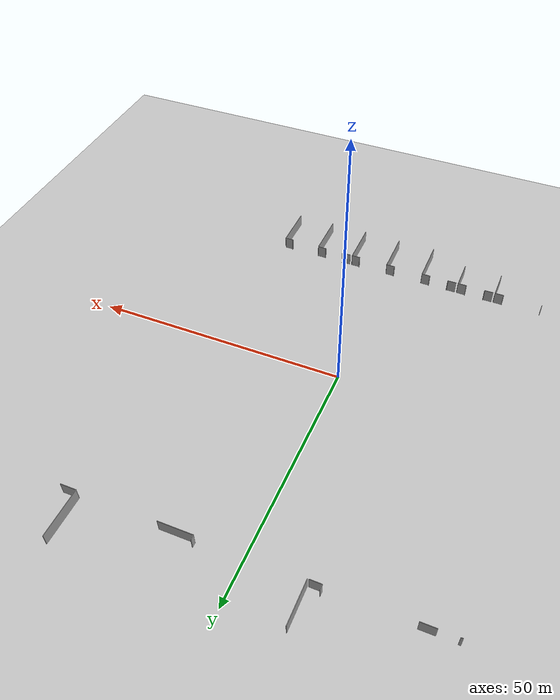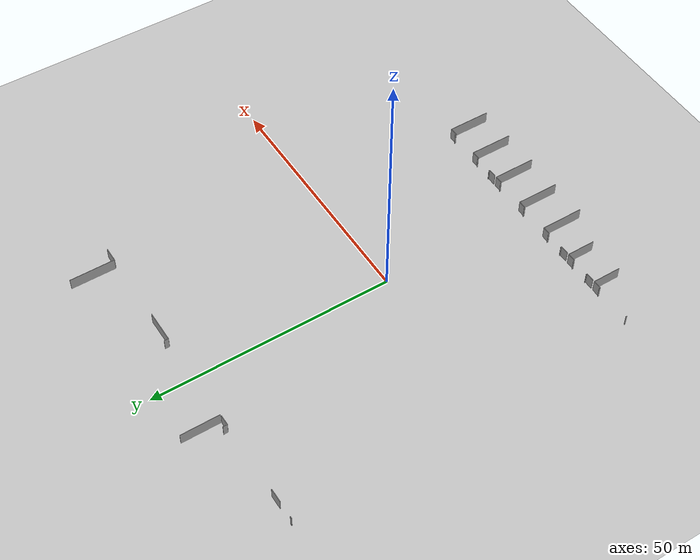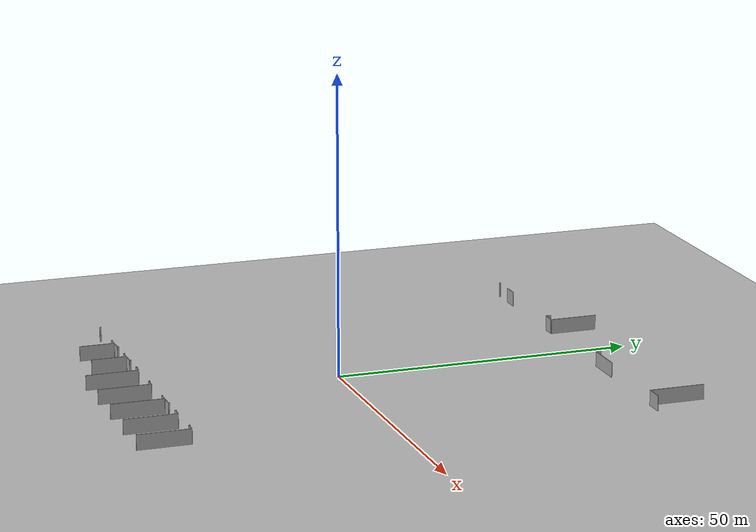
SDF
<sdf version="1.6">
 <world name="default">
  <model name="ground_plane">
   <static>1</static>
   <link name="link">
    <collision name="collision">
     <geometry><plane><normal>0 0 1</normal><size>100 100</size></plane></geometry>
     <surface><friction><ode><mu>100</mu><mu2>50</mu2></ode></friction></surface>
    </collision>
    <visual name="visual">
     <cast_shadows>0</cast_shadows>
     <geometry><plane><normal>0 0 1</normal><size>100 100</size></plane></geometry>
     <material>
      <script><uri>file://media/materials/scripts/gazebo.material</uri><name>Gazebo/Grey</name></script>
     </material>
    </visual>
   </link>
  </model>
  <model name="0510035520_A_40_1_103">
   <static>1</static>
   <link name="Wall_131">
    <collision name="Wall_131_Collision">
     <geometry><box><size>8.00477154333 0.1 2.5</size></box></geometry>
     <pose>4.00238577166 0 1.25 0 0 0</pose>
    </collision>
    <visual name="Wall_131_Visual">
     <pose>4.00238577166 0 1.25 0 0 0</pose>
     <geometry><box><size>8.00477154333 0.1 2.5</size></box></geometry>
     <material>
      <script><uri>file://media/materials/scripts/gazebo.material</uri><name>Gazebo/Grey</name></script>
      <ambient>1 1 1 1</ambient>
     </material>
    </visual>
    <pose>101.475244446 -27.1252085964 0 0 0 1.57079632679</pose>
   </link>
   <link name="Wall_147">
    <collision name="Wall_147_Collision">
     <geometry><box><size>6.50325822806 0.1 2.5</size></box></geometry>
     <pose>3.25162911403 0 1.25 0 0 0</pose>
    </collision>
    <visual name="Wall_147_Visual">
     <pose>3.25162911403 0 1.25 0 0 0</pose>
     <geometry><box><size>6.50325822806 0.1 2.5</size></box></geometry>
     <material>
      <script><uri>file://media/materials/scripts/gazebo.material</uri><name>Gazebo/Grey</name></script>
      <ambient>1 1 1 1</ambient>
     </material>
    </visual>
    <pose>127.195385816 -27.1340917888 0 0 0 3.14159265359</pose>
   </link>
   <link name="Wall_148">
    <collision name="Wall_148_Collision">
     <geometry><box><size>0.896187206934 0.1 2.5</size></box></geometry>
     <pose>0.448093603467 0 1.25 0 0 0</pose>
    </collision>
    <visual name="Wall_148_Visual">
     <pose>0.448093603467 0 1.25 0 0 0</pose>
     <geometry><box><size>0.896187206934 0.1 2.5</size></box></geometry>
     <material>
      <script><uri>file://media/materials/scripts/gazebo.material</uri><name>Gazebo/Grey</name></script>
      <ambient>1 1 1 1</ambient>
     </material>
    </visual>
    <pose>120.692127588 -27.1340917888 0 0 0 1.57079632679</pose>
   </link>
   <link name="Wall_156">
    <collision name="Wall_156_Collision">
     <geometry><box><size>9.21618517649 0.1 2.5</size></box></geometry>
     <pose>4.60809258824 0 1.25 0 0 0</pose>
    </collision>
    <visual name="Wall_156_Visual">
     <pose>4.60809258824 0 1.25 0 0 0</pose>
     <geometry><box><size>9.21618517649 0.1 2.5</size></box></geometry>
     <material>
      <script><uri>file://media/materials/scripts/gazebo.material</uri><name>Gazebo/Grey</name></script>
      <ambient>1 1 1 1</ambient>
     </material>
    </visual>
    <pose>142.281838313 -27.114802571 0 0 0 1.57079632679</pose>
   </link>
   <link name="Wall_161">
    <collision name="Wall_161_Collision">
     <geometry><box><size>3.06292472763 0.1 2.5</size></box></geometry>
     <pose>1.53146236382 0 1.25 0 0 0</pose>
    </collision>
    <visual name="Wall_161_Visual">
     <pose>1.53146236382 0 1.25 0 0 0</pose>
     <geometry><box><size>3.06292472763 0.1 2.5</size></box></geometry>
     <material>
      <script><uri>file://media/materials/scripts/gazebo.material</uri><name>Gazebo/Grey</name></script>
      <ambient>1 1 1 1</ambient>
     </material>
    </visual>
    <pose>145.340702153 -27.1589647274 0 0 0 3.14159265359</pose>
   </link>
   <link name="Wall_162">
    <collision name="Wall_162_Collision">
     <geometry><box><size>0.0443484708045 0.1 2.5</size></box></geometry>
     <pose>0.0221742354022 0 1.25 0 0 0</pose>
    </collision>
    <visual name="Wall_162_Visual">
     <pose>0.0221742354022 0 1.25 0 0 0</pose>
     <geometry><box><size>0.0443484708045 0.1 2.5</size></box></geometry>
     <material>
      <script><uri>file://media/materials/scripts/gazebo.material</uri><name>Gazebo/Grey</name></script>
      <ambient>1 1 1 1</ambient>
     </material>
    </visual>
    <pose>142.277777425 -27.1589647274 0 0 0 1.47910017054</pose>
   </link>
   <link name="Wall_178">
    <collision name="Wall_178_Collision">
     <geometry><box><size>2.79617515117 0.1 2.5</size></box></geometry>
     <pose>1.39808757559 0 1.25 0 0 0</pose>
    </collision>
    <visual name="Wall_178_Visual">
     <pose>1.39808757559 0 1.25 0 0 0</pose>
     <geometry><box><size>2.79617515117 0.1 2.5</size></box></geometry>
     <material>
      <script><uri>file://media/materials/scripts/gazebo.material</uri><name>Gazebo/Grey</name></script>
      <ambient>1 1 1 1</ambient>
     </material>
    </visual>
    <pose>84.0347459724 -27.117340626 0 0 0 3.14159265359</pose>
   </link>
   <link name="Wall_179">
    <collision name="Wall_179_Collision">
     <geometry><box><size>0.423093762095 0.1 2.5</size></box></geometry>
     <pose>0.211546881048 0 1.25 0 0 0</pose>
    </collision>
    <visual name="Wall_179_Visual">
     <pose>0.211546881048 0 1.25 0 0 0</pose>
     <geometry><box><size>0.423093762095 0.1 2.5</size></box></geometry>
     <material>
      <script><uri>file://media/materials/scripts/gazebo.material</uri><name>Gazebo/Grey</name></script>
      <ambient>1 1 1 1</ambient>
     </material>
    </visual>
    <pose>77.9198101535 -27.117340626 0 0 0 3.14159265359</pose>
   </link>
   <link name="Wall_197">
    <collision name="Wall_197_Collision">
     <geometry><box><size>0.90633942678 0.1 2.5</size></box></geometry>
     <pose>0.45316971339 0 1.25 0 0 0</pose>
    </collision>
    <visual name="Wall_197_Visual">
     <pose>0.45316971339 0 1.25 0 0 0</pose>
     <geometry><box><size>0.90633942678 0.1 2.5</size></box></geometry>
     <material>
      <script><uri>file://media/materials/scripts/gazebo.material</uri><name>Gazebo/Grey</name></script>
      <ambient>1 1 1 1</ambient>
     </material>
    </visual>
    <pose>99.0861733111 -27.1447516196 0 0 0 1.57079632679</pose>
   </link>
   <link name="Wall_205">
    <collision name="Wall_205_Collision">
     <geometry><box><size>2.15634320575 0.1 2.5</size></box></geometry>
     <pose>1.07817160287 0 1.25 0 0 0</pose>
    </collision>
    <visual name="Wall_205_Visual">
     <pose>1.07817160287 0 1.25 0 0 0</pose>
     <geometry><box><size>2.15634320575 0.1 2.5</size></box></geometry>
     <material>
      <script><uri>file://media/materials/scripts/gazebo.material</uri><name>Gazebo/Grey</name></script>
      <ambient>1 1 1 1</ambient>
     </material>
    </visual>
    <pose>101.242504806 -27.1518581735 0 0 0 3.13829699697</pose>
   </link>
   <link name="Wall_610">
    <collision name="Wall_610_Collision">
     <geometry><box><size>0.257104967608 0.1 2.5</size></box></geometry>
     <pose>0.128552483804 0 1.25 0 0 0</pose>
    </collision>
    <visual name="Wall_610_Visual">
     <pose>0.128552483804 0 1.25 0 0 0</pose>
     <geometry><box><size>0.257104967608 0.1 2.5</size></box></geometry>
     <material>
      <script><uri>file://media/materials/scripts/gazebo.material</uri><name>Gazebo/Grey</name></script>
      <ambient>1 1 1 1</ambient>
     </material>
    </visual>
    <pose>80.5614177575 -99.914848256 0 0 0 -1.57079632679</pose>
   </link>
   <link name="Wall_618">
    <collision name="Wall_618_Collision">
     <geometry><box><size>0.255835940127 0.1 2.5</size></box></geometry>
     <pose>0.127917970064 0 1.25 0 0 0</pose>
    </collision>
    <visual name="Wall_618_Visual">
     <pose>0.127917970064 0 1.25 0 0 0</pose>
     <geometry><box><size>0.255835940127 0.1 2.5</size></box></geometry>
     <material>
      <script><uri>file://media/materials/scripts/gazebo.material</uri><name>Gazebo/Grey</name></script>
      <ambient>1 1 1 1</ambient>
     </material>
    </visual>
    <pose>88.325327885 -99.9057112582 0 0 0 -1.57079632679</pose>
   </link>
   <link name="Wall_619">
    <collision name="Wall_619_Collision">
     <geometry><box><size>1.75658783891 0.1 2.5</size></box></geometry>
     <pose>0.878293919455 0 1.25 0 0 0</pose>
    </collision>
    <visual name="Wall_619_Visual">
     <pose>0.878293919455 0 1.25 0 0 0</pose>
     <geometry><box><size>1.75658783891 0.1 2.5</size></box></geometry>
     <material>
      <script><uri>file://media/materials/scripts/gazebo.material</uri><name>Gazebo/Grey</name></script>
      <ambient>1 1 1 1</ambient>
     </material>
    </visual>
    <pose>88.325327885 -100.161547198 0 0 0 0.0</pose>
   </link>
   <link name="Wall_620">
    <collision name="Wall_620_Collision">
     <geometry><box><size>5.83549596767 0.1 2.5</size></box></geometry>
     <pose>2.91774798383 0 1.25 0 0 0</pose>
    </collision>
    <visual name="Wall_620_Visual">
     <pose>2.91774798383 0 1.25 0 0 0</pose>
     <geometry><box><size>5.83549596767 0.1 2.5</size></box></geometry>
     <material>
      <script><uri>file://media/materials/scripts/gazebo.material</uri><name>Gazebo/Grey</name></script>
      <ambient>1 1 1 1</ambient>
     </material>
    </visual>
    <pose>90.0819157239 -100.161547198 0 0 0 -1.57079632679</pose>
   </link>
   <link name="Wall_626">
    <collision name="Wall_626_Collision">
     <geometry><box><size>1.7441513696 0.1 2.5</size></box></geometry>
     <pose>0.872075684799 0 1.25 0 0 0</pose>
    </collision>
    <visual name="Wall_626_Visual">
     <pose>0.872075684799 0 1.25 0 0 0</pose>
     <geometry><box><size>1.7441513696 0.1 2.5</size></box></geometry>
     <material>
      <script><uri>file://media/materials/scripts/gazebo.material</uri><name>Gazebo/Grey</name></script>
      <ambient>1 1 1 1</ambient>
     </material>
    </visual>
    <pose>90.4798827419 -100.152917811 0 0 0 0.0</pose>
   </link>
   <link name="Wall_627">
    <collision name="Wall_627_Collision">
     <geometry><box><size>0.244668498296 0.1 2.5</size></box></geometry>
     <pose>0.122334249148 0 1.25 0 0 0</pose>
    </collision>
    <visual name="Wall_627_Visual">
     <pose>0.122334249148 0 1.25 0 0 0</pose>
     <geometry><box><size>0.244668498296 0.1 2.5</size></box></geometry>
     <material>
      <script><uri>file://media/materials/scripts/gazebo.material</uri><name>Gazebo/Grey</name></script>
      <ambient>1 1 1 1</ambient>
     </material>
    </visual>
    <pose>92.2240341115 -100.152917811 0 0 0 1.57079632679</pose>
   </link>
   <link name="Wall_628">
    <collision name="Wall_628_Collision">
     <geometry><box><size>0.24771416425 0.1 2.5</size></box></geometry>
     <pose>0.123857082125 0 1.25 0 0 0</pose>
    </collision>
    <visual name="Wall_628_Visual">
     <pose>0.123857082125 0 1.25 0 0 0</pose>
     <geometry><box><size>0.24771416425 0.1 2.5</size></box></geometry>
     <material>
      <script><uri>file://media/materials/scripts/gazebo.material</uri><name>Gazebo/Grey</name></script>
      <ambient>1 1 1 1</ambient>
     </material>
    </visual>
    <pose>96.0610656024 -99.9082493131 0 0 0 -1.57079632679</pose>
   </link>
   <link name="Wall_629">
    <collision name="Wall_629_Collision">
     <geometry><box><size>1.74643561906 0.1 2.5</size></box></geometry>
     <pose>0.873217809532 0 1.25 0 0 0</pose>
    </collision>
    <visual name="Wall_629_Visual">
     <pose>0.873217809532 0 1.25 0 0 0</pose>
     <geometry><box><size>1.74643561906 0.1 2.5</size></box></geometry>
     <material>
      <script><uri>file://media/materials/scripts/gazebo.material</uri><name>Gazebo/Grey</name></script>
      <ambient>1 1 1 1</ambient>
     </material>
    </visual>
    <pose>96.0610656024 -100.155963477 0 0 0 0.0</pose>
   </link>
   <link name="Wall_630">
    <collision name="Wall_630_Collision">
     <geometry><box><size>5.81011541805 0.1 2.5</size></box></geometry>
     <pose>2.90505770902 0 1.25 0 0 0</pose>
    </collision>
    <visual name="Wall_630_Visual">
     <pose>2.90505770902 0 1.25 0 0 0</pose>
     <geometry><box><size>5.81011541805 0.1 2.5</size></box></geometry>
     <material>
      <script><uri>file://media/materials/scripts/gazebo.material</uri><name>Gazebo/Grey</name></script>
      <ambient>1 1 1 1</ambient>
     </material>
    </visual>
    <pose>97.8075012214 -100.155963477 0 0 0 -1.57079632679</pose>
   </link>
   <link name="Wall_636">
    <collision name="Wall_636_Collision">
     <geometry><box><size>1.74567420257 0.1 2.5</size></box></geometry>
     <pose>0.872837101287 0 1.25 0 0 0</pose>
    </collision>
    <visual name="Wall_636_Visual">
     <pose>0.872837101287 0 1.25 0 0 0</pose>
     <geometry><box><size>1.74567420257 0.1 2.5</size></box></geometry>
     <material>
      <script><uri>file://media/materials/scripts/gazebo.material</uri><name>Gazebo/Grey</name></script>
      <ambient>1 1 1 1</ambient>
     </material>
    </visual>
    <pose>98.2217117912 -100.158247727 0 0 0 0.0</pose>
   </link>
   <link name="Wall_637">
    <collision name="Wall_637_Collision">
     <geometry><box><size>0.266749576462 0.1 2.5</size></box></geometry>
     <pose>0.133374788231 0 1.25 0 0 0</pose>
    </collision>
    <visual name="Wall_637_Visual">
     <pose>0.133374788231 0 1.25 0 0 0</pose>
     <geometry><box><size>0.266749576462 0.1 2.5</size></box></geometry>
     <material>
      <script><uri>file://media/materials/scripts/gazebo.material</uri><name>Gazebo/Grey</name></script>
      <ambient>1 1 1 1</ambient>
     </material>
    </visual>
    <pose>99.9673859937 -100.158247727 0 0 0 1.57079632679</pose>
   </link>
   <link name="Wall_638">
    <collision name="Wall_638_Collision">
     <geometry><box><size>0.266749576462 0.1 2.5</size></box></geometry>
     <pose>0.133374788231 0 1.25 0 0 0</pose>
    </collision>
    <visual name="Wall_638_Visual">
     <pose>0.133374788231 0 1.25 0 0 0</pose>
     <geometry><box><size>0.266749576462 0.1 2.5</size></box></geometry>
     <material>
      <script><uri>file://media/materials/scripts/gazebo.material</uri><name>Gazebo/Grey</name></script>
      <ambient>1 1 1 1</ambient>
     </material>
    </visual>
    <pose>103.827259979 -99.8914981504 0 0 0 -1.57079632679</pose>
   </link>
   <link name="Wall_639">
    <collision name="Wall_639_Collision">
     <geometry><box><size>1.71699418151 0.1 2.5</size></box></geometry>
     <pose>0.858497090755 0 1.25 0 0 0</pose>
    </collision>
    <visual name="Wall_639_Visual">
     <pose>0.858497090755 0 1.25 0 0 0</pose>
     <geometry><box><size>1.71699418151 0.1 2.5</size></box></geometry>
     <material>
      <script><uri>file://media/materials/scripts/gazebo.material</uri><name>Gazebo/Grey</name></script>
      <ambient>1 1 1 1</ambient>
     </material>
    </visual>
    <pose>103.827259979 -100.158247727 0 0 0 0.0</pose>
   </link>
   <link name="Wall_640">
    <collision name="Wall_640_Collision">
     <geometry><box><size>8.71542693257 0.1 2.5</size></box></geometry>
     <pose>4.35771346629 0 1.25 0 0 0</pose>
    </collision>
    <visual name="Wall_640_Visual">
     <pose>4.35771346629 0 1.25 0 0 0</pose>
     <geometry><box><size>8.71542693257 0.1 2.5</size></box></geometry>
     <material>
      <script><uri>file://media/materials/scripts/gazebo.material</uri><name>Gazebo/Grey</name></script>
      <ambient>1 1 1 1</ambient>
     </material>
    </visual>
    <pose>105.544254161 -100.158247727 0 0 0 -1.57079632679</pose>
   </link>
   <link name="Wall_646">
    <collision name="Wall_646_Collision">
     <geometry><box><size>0.245176109289 0.1 2.5</size></box></geometry>
     <pose>0.122588054644 0 1.25 0 0 0</pose>
    </collision>
    <visual name="Wall_646_Visual">
     <pose>0.122588054644 0 1.25 0 0 0</pose>
     <geometry><box><size>0.245176109289 0.1 2.5</size></box></geometry>
     <material>
      <script><uri>file://media/materials/scripts/gazebo.material</uri><name>Gazebo/Grey</name></script>
      <ambient>1 1 1 1</ambient>
     </material>
    </visual>
    <pose>111.554114504 -99.9130716176 0 0 0 -1.57079632679</pose>
   </link>
   <link name="Wall_647">
    <collision name="Wall_647_Collision">
     <geometry><box><size>1.73146109479 0.1 2.5</size></box></geometry>
     <pose>0.865730547395 0 1.25 0 0 0</pose>
    </collision>
    <visual name="Wall_647_Visual">
     <pose>0.865730547395 0 1.25 0 0 0</pose>
     <geometry><box><size>1.73146109479 0.1 2.5</size></box></geometry>
     <material>
      <script><uri>file://media/materials/scripts/gazebo.material</uri><name>Gazebo/Grey</name></script>
      <ambient>1 1 1 1</ambient>
     </material>
    </visual>
    <pose>111.554114504 -100.158247727 0 0 0 0.0</pose>
   </link>
   <link name="Wall_648">
    <collision name="Wall_648_Collision">
     <geometry><box><size>8.70908179517 0.1 2.5</size></box></geometry>
     <pose>4.35454089758 0 1.25 0 0 0</pose>
    </collision>
    <visual name="Wall_648_Visual">
     <pose>4.35454089758 0 1.25 0 0 0</pose>
     <geometry><box><size>8.70908179517 0.1 2.5</size></box></geometry>
     <material>
      <script><uri>file://media/materials/scripts/gazebo.material</uri><name>Gazebo/Grey</name></script>
      <ambient>1 1 1 1</ambient>
     </material>
    </visual>
    <pose>113.285575599 -100.158247727 0 0 0 -1.57079632679</pose>
   </link>
   <link name="Wall_654">
    <collision name="Wall_654_Collision">
     <geometry><box><size>0.238069555396 0.1 2.5</size></box></geometry>
     <pose>0.119034777698 0 1.25 0 0 0</pose>
    </collision>
    <visual name="Wall_654_Visual">
     <pose>0.119034777698 0 1.25 0 0 0</pose>
     <geometry><box><size>0.238069555396 0.1 2.5</size></box></geometry>
     <material>
      <script><uri>file://media/materials/scripts/gazebo.material</uri><name>Gazebo/Grey</name></script>
      <ambient>1 1 1 1</ambient>
     </material>
    </visual>
    <pose>119.331730129 -99.9130716176 0 0 0 -1.57079632679</pose>
   </link>
   <link name="Wall_655">
    <collision name="Wall_655_Collision">
     <geometry><box><size>1.70988762762 0.1 2.5</size></box></geometry>
     <pose>0.854943813808 0 1.25 0 0 0</pose>
    </collision>
    <visual name="Wall_655_Visual">
     <pose>0.854943813808 0 1.25 0 0 0</pose>
     <geometry><box><size>1.70988762762 0.1 2.5</size></box></geometry>
     <material>
      <script><uri>file://media/materials/scripts/gazebo.material</uri><name>Gazebo/Grey</name></script>
      <ambient>1 1 1 1</ambient>
     </material>
    </visual>
    <pose>119.331730129 -100.151141173 0 0 0 0.0</pose>
   </link>
   <link name="Wall_656">
    <collision name="Wall_656_Collision">
     <geometry><box><size>8.72608676341 0.1 2.5</size></box></geometry>
     <pose>4.3630433817 0 1.25 0 0 0</pose>
    </collision>
    <visual name="Wall_656_Visual">
     <pose>4.3630433817 0 1.25 0 0 0</pose>
     <geometry><box><size>8.72608676341 0.1 2.5</size></box></geometry>
     <material>
      <script><uri>file://media/materials/scripts/gazebo.material</uri><name>Gazebo/Grey</name></script>
      <ambient>1 1 1 1</ambient>
     </material>
    </visual>
    <pose>121.041617756 -100.151141173 0 0 0 -1.57079632679</pose>
   </link>
   <link name="Wall_660">
    <collision name="Wall_660_Collision">
     <geometry><box><size>1.75252695097 0.1 2.5</size></box></geometry>
     <pose>0.876263475486 0 1.25 0 0 0</pose>
    </collision>
    <visual name="Wall_660_Visual">
     <pose>0.876263475486 0 1.25 0 0 0</pose>
     <geometry><box><size>1.75252695097 0.1 2.5</size></box></geometry>
     <material>
      <script><uri>file://media/materials/scripts/gazebo.material</uri><name>Gazebo/Grey</name></script>
      <ambient>1 1 1 1</ambient>
     </material>
    </visual>
    <pose>121.460904436 -100.148095507 0 0 0 0.0</pose>
   </link>
   <link name="Wall_661">
    <collision name="Wall_661_Collision">
     <geometry><box><size>0.227155919061 0.1 2.5</size></box></geometry>
     <pose>0.113577959531 0 1.25 0 0 0</pose>
    </collision>
    <visual name="Wall_661_Visual">
     <pose>0.113577959531 0 1.25 0 0 0</pose>
     <geometry><box><size>0.227155919061 0.1 2.5</size></box></geometry>
     <material>
      <script><uri>file://media/materials/scripts/gazebo.material</uri><name>Gazebo/Grey</name></script>
      <ambient>1 1 1 1</ambient>
     </material>
    </visual>
    <pose>123.213431387 -100.148095507 0 0 0 1.57079632679</pose>
   </link>
   <link name="Wall_662">
    <collision name="Wall_662_Collision">
     <geometry><box><size>0.227663530054 0.1 2.5</size></box></geometry>
     <pose>0.113831765027 0 1.25 0 0 0</pose>
    </collision>
    <visual name="Wall_662_Visual">
     <pose>0.113831765027 0 1.25 0 0 0</pose>
     <geometry><box><size>0.227663530054 0.1 2.5</size></box></geometry>
     <material>
      <script><uri>file://media/materials/scripts/gazebo.material</uri><name>Gazebo/Grey</name></script>
      <ambient>1 1 1 1</ambient>
     </material>
    </visual>
    <pose>127.063660764 -99.9209395879 0 0 0 -1.57079632679</pose>
   </link>
   <link name="Wall_663">
    <collision name="Wall_663_Collision">
     <geometry><box><size>1.75557261693 0.1 2.5</size></box></geometry>
     <pose>0.877786308463 0 1.25 0 0 0</pose>
    </collision>
    <visual name="Wall_663_Visual">
     <pose>0.877786308463 0 1.25 0 0 0</pose>
     <geometry><box><size>1.75557261693 0.1 2.5</size></box></geometry>
     <material>
      <script><uri>file://media/materials/scripts/gazebo.material</uri><name>Gazebo/Grey</name></script>
      <ambient>1 1 1 1</ambient>
     </material>
    </visual>
    <pose>127.063660764 -100.148603118 0 0 0 0.0</pose>
   </link>
   <link name="Wall_664">
    <collision name="Wall_664_Collision">
     <geometry><box><size>8.76720325379 0.1 2.5</size></box></geometry>
     <pose>4.38360162689 0 1.25 0 0 0</pose>
    </collision>
    <visual name="Wall_664_Visual">
     <pose>4.38360162689 0 1.25 0 0 0</pose>
     <geometry><box><size>8.76720325379 0.1 2.5</size></box></geometry>
     <material>
      <script><uri>file://media/materials/scripts/gazebo.material</uri><name>Gazebo/Grey</name></script>
      <ambient>1 1 1 1</ambient>
     </material>
    </visual>
    <pose>128.81923338 -100.148603118 0 0 0 -1.57079632679</pose>
   </link>
   <link name="Wall_670">
    <collision name="Wall_670_Collision">
     <geometry><box><size>0.251267441196 0.1 2.5</size></box></geometry>
     <pose>0.125633720598 0 1.25 0 0 0</pose>
    </collision>
    <visual name="Wall_670_Visual">
     <pose>0.125633720598 0 1.25 0 0 0</pose>
     <geometry><box><size>0.251267441196 0.1 2.5</size></box></geometry>
     <material>
      <script><uri>file://media/materials/scripts/gazebo.material</uri><name>Gazebo/Grey</name></script>
      <ambient>1 1 1 1</ambient>
     </material>
    </visual>
    <pose>134.786962012 -99.8958128438 0 0 0 -1.57079632679</pose>
   </link>
   <link name="Wall_671">
    <collision name="Wall_671_Collision">
     <geometry><box><size>1.70100443525 0.1 2.5</size></box></geometry>
     <pose>0.850502217626 0 1.25 0 0 0</pose>
    </collision>
    <visual name="Wall_671_Visual">
     <pose>0.850502217626 0 1.25 0 0 0</pose>
     <geometry><box><size>1.70100443525 0.1 2.5</size></box></geometry>
     <material>
      <script><uri>file://media/materials/scripts/gazebo.material</uri><name>Gazebo/Grey</name></script>
      <ambient>1 1 1 1</ambient>
     </material>
    </visual>
    <pose>134.786962012 -100.147080285 0 0 0 0.0</pose>
   </link>
   <link name="Wall_672">
    <collision name="Wall_672_Collision">
     <geometry><box><size>8.72634056891 0.1 2.5</size></box></geometry>
     <pose>4.36317028445 0 1.25 0 0 0</pose>
    </collision>
    <visual name="Wall_672_Visual">
     <pose>4.36317028445 0 1.25 0 0 0</pose>
     <geometry><box><size>8.72634056891 0.1 2.5</size></box></geometry>
     <material>
      <script><uri>file://media/materials/scripts/gazebo.material</uri><name>Gazebo/Grey</name></script>
      <ambient>1 1 1 1</ambient>
     </material>
    </visual>
    <pose>136.487966447 -100.147080285 0 0 0 -1.57079632679</pose>
   </link>
   <pose>-112.2 68.6448144365 0 0 0 0</pose>
  </model>
 </world>
</sdf>
